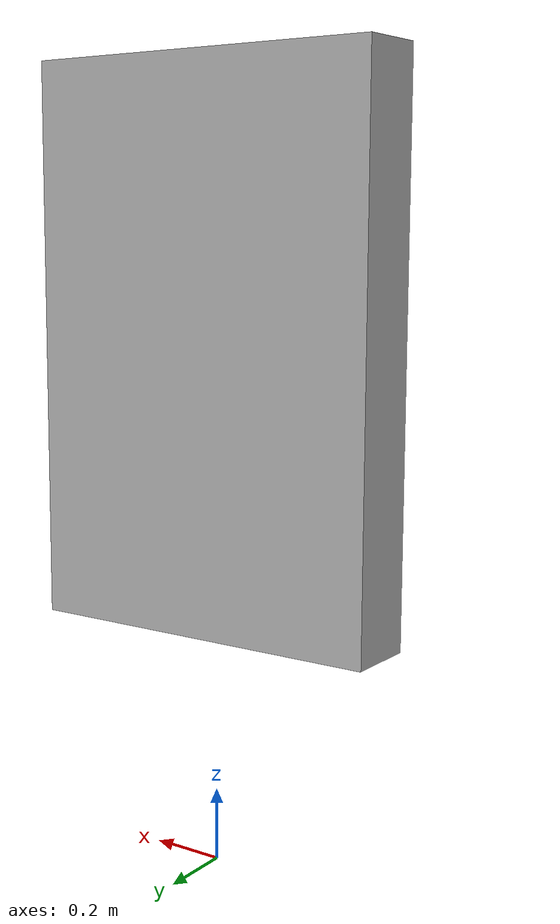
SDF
<?xml version="1.0" ?>
<sdf version="1.5">
  <model name="painting_wall">
    <static>true</static>
    <link name="link">
      <pose>0 0 1.4 0 0 0</pose>
      <collision name="collision">
        <geometry>
          <box>
            <size>1 0.2 1.5</size>
          </box>
        </geometry>
      </collision>
      <visual name="visual">
        <cast_shadows>false</cast_shadows>
        <geometry>
          <box>
            <size>1 0.2 1.5</size>
          </box>
        </geometry>
        <material>
          <script>
            <uri>model://painting_wall/materials/scripts</uri>
            <uri>model://painting_wall/materials/textures</uri>
            <name>vrc/painting_wall</name>
          </script>
        </material>
      </visual>
    </link>
  </model>
</sdf>
